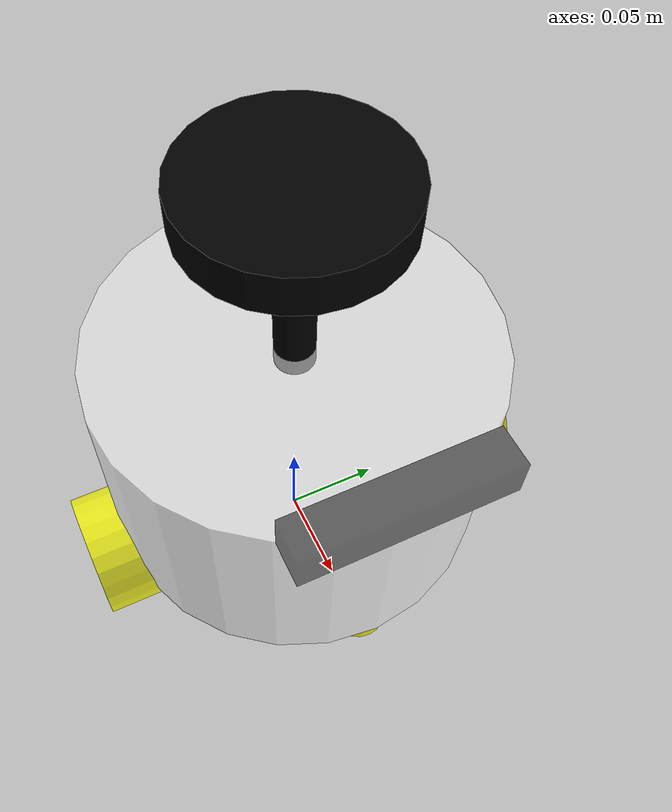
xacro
<?xml version="1.0"?>
<robot xmlns:xacro="http://www.ros.org/wiki/xacro" name="fishbot">

    <xacro:include filename="$(find fishbot_description)/urdf/fishbot/base.urdf.xacro"/>

    <xacro:include filename="$(find fishbot_description)/urdf/fishbot/sensor/imu.urdf.xacro"/>
    <xacro:include filename="$(find fishbot_description)/urdf/fishbot/sensor/camera.urdf.xacro"/>
    <xacro:include filename="$(find fishbot_description)/urdf/fishbot/sensor/laser.urdf.xacro"/>

    <!--导入执行器部分-->
    <xacro:include filename="$(find fishbot_description)/urdf/fishbot/actuator/wheel.urdf.xacro"/>
    <xacro:include filename="$(find fishbot_description)/urdf/fishbot/actuator/caster.urdf.xacro"/>

    <!-- 插件 -->
    <xacro:include filename="$(find fishbot_description)/urdf/fishbot/plugins/gazebo_control_plugin.xacro"/>
    <xacro:include filename="$(find fishbot_description)/urdf/fishbot/plugins/gazebo_sensor_plugin.xacro"/>
    <xacro:include filename="$(find fishbot_description)/urdf/fishbot/fishbot.ros2_control.xacro"/>

    <xacro:base_xacro length ="0.12" radius="0.10" />
    <xacro:imu_xacro xyz="0.0 0.0 0.02" />
    <xacro:camera_xacro xyz="0.10 0.0 0.075" />
    <xacro:laser_xacro xyz="0.0 0.0 0.10" />

    <xacro:wheel_xacro wheel_name="left_wheel" xyz="0 0.10 -0.06" />
    <xacro:wheel_xacro wheel_name="right_wheel" xyz="0 -0.10 -0.06" />
    <xacro:caster_xacro caster_name="front_caster" xyz="0.08 0 -0.076" />
    <xacro:caster_xacro caster_name="back_caster" xyz="-0.08 0 -0.076" />
    <xacro:gazebo_sensor_plugin />
    <xacro:fishbot_ros2_control />

</robot>

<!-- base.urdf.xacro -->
<robot xmlns:xacro="http://www.ros.org/wiki/xacro">
    <xacro:include filename="$(find fishbot_description)/urdf/fishbot/common_inertia.xacro"/>

    <xacro:macro name="base_xacro" params="length radius">
        <link name="base_footprint">

        </link>

        <!--机器人身体部分-->
        <link name="base_link">
            <!--部件外观描述-->
            <visual>
                <!--部件沿着自己几何中心的偏移和旋转量-->
                <origin xyz="0.0 0.0 0.0" rpy="0.0 0.0 0.0"/>
                <!--几何形状-->
                <geometry>
                <cylinder radius="${radius}" length="${length}"/>
                </geometry>
                <!--材质-->
                <material name="white">
                    <color rgba="1.0 1.0 1.0 0.5"/>
                </material>
            </visual>

            <collision>
                  <origin xyz="0.0 0.0 0.0" rpy="0.0 0.0 0.0"/>
                <!--几何形状-->
                <geometry>
                <cylinder radius="${radius}" length="${length}"/>
                </geometry>
                <!--材质-->
                <material name="white">
                    <color rgba="1.0 1.0 1.0 0.5"/>
                </material>
            </collision>
            <xacro:cylinder_inertia m="1.0" r="${radius}" h="${length}"/>

        </link>

        <joint name="base_footprint" type="fixed">
            <origin xyz="0.0 0.0 ${length/2+0.032-0.001}" rpy="0.0 0.0 0.0"/>
            <parent link="base_footprint"/>
            <child link="base_link"/>

        </joint>

    </xacro:macro>

</robot>

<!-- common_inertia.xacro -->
<robot xmlns:xacro="http://www.ros.org/wiki/xacro">
    <xacro:macro name="box_inertia" params="m w h d">
        <inertial>
            <mass value="${m}" />
            <inertia ixx="${(m/12) * (h*h + d*d)}" ixy="0.0" ixz="0.0" iyy="${(m/12) * (w*w + d*d)}" izz="${(m/12) * (w*w + h*h)}" iyz="0.0"/>
        </inertial>
    </xacro:macro>

    <xacro:macro name="cylinder_inertia" params="m r h">
        <inertial>
            <mass value="${m}" />
            <inertia ixx="${(m/12) * (3*r*r + h*h)}" ixy="0" ixz="0" iyy="${(m/12) * (3*r*r + h*h)}" izz="${(m/2) * r*r}" iyz="0"/>
        </inertial>
    </xacro:macro>

    <xacro:macro name="sphere_inertia" params="m r">
        <inertial>
            <mass value="${m}" />
            <inertia ixx="${(2/5) * m * (r*r)}" ixy="0.0" ixz="0.0" iyy="${(2/5) * m * (r*r)}" iyz="0.0" izz="${(2/5) * m * (r*r)}"/>
        </inertial>
    </xacro:macro>
</robot>

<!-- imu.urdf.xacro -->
<robot xmlns:xacro="http://www.ros.org/wiki/xacro" >
     <xacro:include filename="$(find fishbot_description)/urdf/fishbot/common_inertia.xacro"/>

    <xacro:macro name="imu_xacro" params="xyz" >
            <!--机器人的imu部件，惯性测量传感器-->
            <link name="imu_link">
            <!--部件外观描述-->
            <visual>
                <!--部件沿着自己几何中心的偏移和旋转量-->
                <origin xyz="0.0 0.0 0.0" rpy="0.0 0.0 0.0"/>
                <!--几何形状-->
                <geometry>
                <box size="0.02 0.02 0.02"/>
                </geometry>
                <!--材质-->
                <material name="black">
                    <color rgba="0.0 0.0 0.0 0.5"/>
                </material>
            </visual>
            <collision>
                      <!--部件沿着自己几何中心的偏移和旋转量-->
                <origin xyz="0.0 0.0 0.0" rpy="0.0 0.0 0.0"/>
                <!--几何形状-->
                <geometry>
                <box size="0.02 0.02 0.02"/>
                </geometry>
                <!--材质-->
                <material name="black">
                    <color rgba="0.0 0.0 0.0 0.5"/>
                </material>
            </collision>
            <xacro:box_inertia m="0.05" w="0.02" h="0.02" d="0.02"/>

        </link>

        <!--机器人的关节，组合机器人的部件-->
        <joint name="imu_joint" type="fixed">
            <parent link="base_link"/>
            <child link="imu_link"/>
            <origin xyz="${xyz}" rpy="0.0 0.0 0.0"/>
        </joint>
    </xacro:macro>

</robot>

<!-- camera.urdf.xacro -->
<robot xmlns:xacro="http://www.ros.org/wiki/xacro" >
    <xacro:include filename="$(find fishbot_description)/urdf/fishbot/common_inertia.xacro"/>

    <xacro:macro name="camera_xacro" params="xyz" >
            <!--机器人的camera部件，惯性测量传感器-->
            <link name="camera_link">
            <!--部件外观描述-->
            <visual>
                <!--部件沿着自己几何中心的偏移和旋转量-->
                <origin xyz="0.0 0.0 0.0" rpy="0.0 0.0 0.0"/>
                <!--几何形状-->
                <geometry>
                <box size="0.02 0.10 0.02"/>
                </geometry>
                <!--材质-->
                <material name="black">
                    <color rgba="0.0 0.0 0.0 0.5"/>
                </material>
            </visual>
            <collision>
                             <!--部件沿着自己几何中心的偏移和旋转量-->
                <origin xyz="0.0 0.0 0.0" rpy="0.0 0.0 0.0"/>
                <!--几何形状-->
                <geometry>
                <box size="0.06 0.02 0.02"/>
                </geometry>
                <!--材质-->
                <material name="black">
                    <color rgba="0.0 0.0 0.0 0.5"/>
                </material>
            </collision>
            <xacro:box_inertia m="0.1" w="0.02" h="0.10" d="0.02"/>

        </link>
            <!--虚拟相机部件，调整姿态描述-->
        <link name="camera_optical_link">
        </link>

        <!--机器人的关节，组合机器人的部件-->
        <joint name="camera_joint" type="fixed">
            <parent link="base_link"/>
            <child link="camera_link"/>
            <origin xyz="${xyz}" rpy="0.0 0.0 0.0"/>
        </joint>

        <joint name="camera_optical_joint" type="fixed">
            <parent link="camera_link"/>
            <child link="camera_optical_link"/>
            <origin xyz="0 0 0" rpy="${-pi/2} 0.0 ${-pi/2}"/>
        </joint>

        <gazebo reference="laser_link">
            <material> Gazebo/Black </material>
        </gazebo>

    </xacro:macro>

</robot>

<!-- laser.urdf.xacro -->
<robot xmlns:xacro="http://www.ros.org/wiki/xacro" >
     <xacro:include filename="$(find fishbot_description)/urdf/fishbot/common_inertia.xacro"/>

    <xacro:macro name="laser_xacro" params="xyz" >
    <!--雷达支撑杆-->
            <!--机器人的laser部件，惯性测量传感器-->
            <link name="laser_cylinder_link">
            <!--部件外观描述-->
            <visual>
                <!--部件沿着自己几何中心的偏移和旋转量-->
                <origin xyz="0.0 0.0 0.0" rpy="0.0 0.0 0.0"/>
                <!--几何形状-->
                <geometry>
                    <cylinder radius="0.01" length="0.1"/>
                </geometry>
                <!--材质-->
                <material name="black">
                    <color rgba="0.0 0.0 0.0 1.0"/>
                </material>
            </visual>
            <collision>
                          <!--部件沿着自己几何中心的偏移和旋转量-->
                <origin xyz="0.0 0.0 0.0" rpy="0.0 0.0 0.0"/>
                <!--几何形状-->
                <geometry>
                    <cylinder radius="0.01" length="0.1"/>
                </geometry>
                <!--材质-->
                <material name="black">
                    <color rgba="0.0 0.0 0.0 1.0"/>
                </material>
            </collision>
            <xacro:cylinder_inertia m="0.05" r="0.01" h="0.1"/>

        </link>

           <!--雷达-->
            <!--机器人的laser部件，惯性测量传感器-->
            <link name="laser_link">
            <!--部件外观描述-->
            <visual>
                <!--部件沿着自己几何中心的偏移和旋转量-->
                <origin xyz="0.0 0.0 0.0" rpy="0.0 0.0 0.0"/>
                <!--几何形状-->
                <geometry>
                    <cylinder radius="0.05" length="0.02"/>
                </geometry>
                <!--材质-->
                <material name="black">
                    <color rgba="0.0 0.0 0.0 1.0"/>
                </material>
            </visual>
            <collision>
                              <!--部件沿着自己几何中心的偏移和旋转量-->
                <origin xyz="0.0 0.0 0.0" rpy="0.0 0.0 0.0"/>
                <!--几何形状-->
                <geometry>
                    <cylinder radius="0.05" length="0.02"/>
                </geometry>
                <!--材质-->
                <material name="black">
                    <color rgba="0.0 0.0 0.0 1.0"/>
                </material>
            </collision>
            <xacro:cylinder_inertia m="0.10" r="0.02" h="0.2"/>

        </link>

        <!--机器人的关节，组合机器人的部件-->
        <joint name="laser_joint" type="fixed">
            <parent link="laser_cylinder_link"/>
            <child link="laser_link"/>
            <origin xyz="0.0 0.0 0.05" rpy="0.0 0.0 0.0"/>
        </joint>

         <joint name="laser_cylinder_joint" type="fixed">
            <parent link="base_link"/>
            <child link="laser_cylinder_link"/>
            <origin xyz="${xyz}" rpy="0.0 0.0 0.0"/>
        </joint>

        <gazebo reference="laser_cylinder_link">
            <material> Gazebo/Black </material>
        </gazebo>

        <gazebo reference="laser_link">
            <material> Gazebo/Black </material>
        </gazebo>

    </xacro:macro>

</robot>

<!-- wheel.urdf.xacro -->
<robot xmlns:xacro="http://www.ros.org/wiki/xacro">
    <xacro:include filename="$(find fishbot_description)/urdf/fishbot/common_inertia.xacro"/>

    <xacro:macro name="wheel_xacro" params="wheel_name xyz">

        <!--机器人身体部分-->
        <link name="${wheel_name}_link">
            <!--部件外观描述-->
            <visual>
                <!--部件沿着自己几何中心的偏移和旋转量-->
                <origin xyz="0.0 0.0 0.0" rpy="1.57079 0.0 0.0"/>
                <!--几何形状-->
                <geometry>
                <cylinder radius="0.032" length="0.04"/>
                </geometry>
                <!--材质-->
                <material name="yellow">
                    <color rgba="1.0 1.0 0.0 0.8"/>
                </material>
            </visual>
            <collision>
                         <!--部件沿着自己几何中心的偏移和旋转量-->
                <origin xyz="0.0 0.0 0.0" rpy="1.57079 0.0 0.0"/>
                <!--几何形状-->
                <geometry>
                <cylinder radius="0.032" length="0.04"/>
                </geometry>
                <!--材质-->
                <material name="yellow">
                    <color rgba="1.0 1.0 0.0 0.8"/>
                </material>
            </collision>
            <xacro:cylinder_inertia m="0.05" r="0.032" h="0.04"/>

        </link>

       <joint name="${wheel_name}_joint" type="continuous">
            <parent link="base_link"/>
            <child link="${wheel_name}_link"/>
            <axis xyz="0 1 0"/>
            <origin xyz="${xyz}" rpy="0 0 0"/>
        </joint>

         <gazebo reference="${wheel_name}_link">
            <mu1 value="20.0"/>
            <mu2 value="20.0"/>
            <kp value="10000000"/>
            <kd value="1.0"/>
            <material>Gazebo/Yellow</material>
        </gazebo>

    </xacro:macro>

</robot>

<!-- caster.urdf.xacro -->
<robot xmlns:xacro="http://www.ros.org/wiki/xacro">
    <xacro:include filename="$(find fishbot_description)/urdf/fishbot/common_inertia.xacro"/>
    <xacro:macro name="caster_xacro" params="caster_name xyz">

        <!--机器人身体部分-->
        <link name="${caster_name}_link">
            <!--部件外观描述-->
            <visual>
                <!--部件沿着自己几何中心的偏移和旋转量-->
                <origin xyz="0.0 0.0 0.0" rpy="0.0 0.0 0.0"/>
                <!--几何形状-->
                <geometry>
                <sphere radius="0.016"/>
                </geometry>
                <!--材质-->
                <material name="yellow">
                    <color rgba="1.0 1.0 0.0 0.8"/>
                </material>
            </visual>

            <collision>
                                <!--部件沿着自己几何中心的偏移和旋转量-->
                <origin xyz="0.0 0.0 0.0" rpy="0.0 0.0 0.0"/>
                <!--几何形状-->
                <geometry>
                <sphere radius="0.016"/>
                </geometry>
                <!--材质-->
                <material name="yellow">
                    <color rgba="1.0 1.0 0.0 0.8"/>
                </material>

            </collision>
            <xacro:sphere_inertia  m="0.05" r="0.016"/>

        </link>

       <joint name="${caster_name}_joint" type="fixed">
            <parent link="base_link"/>
            <child link="${caster_name}_link"/>
            <axis xyz="0 1 0"/>
            <origin xyz="${xyz}" rpy="0 0 0"/>
        </joint>

         <gazebo reference="${caster_name}_link">
            <mu1 value="0.0"/>
            <mu2 value="0.0"/>
            <kp value="10000000"/>
            <kd value="1.0"/>
            <material>Gazebo/Red</material>
        </gazebo>

    </xacro:macro>

</robot>
